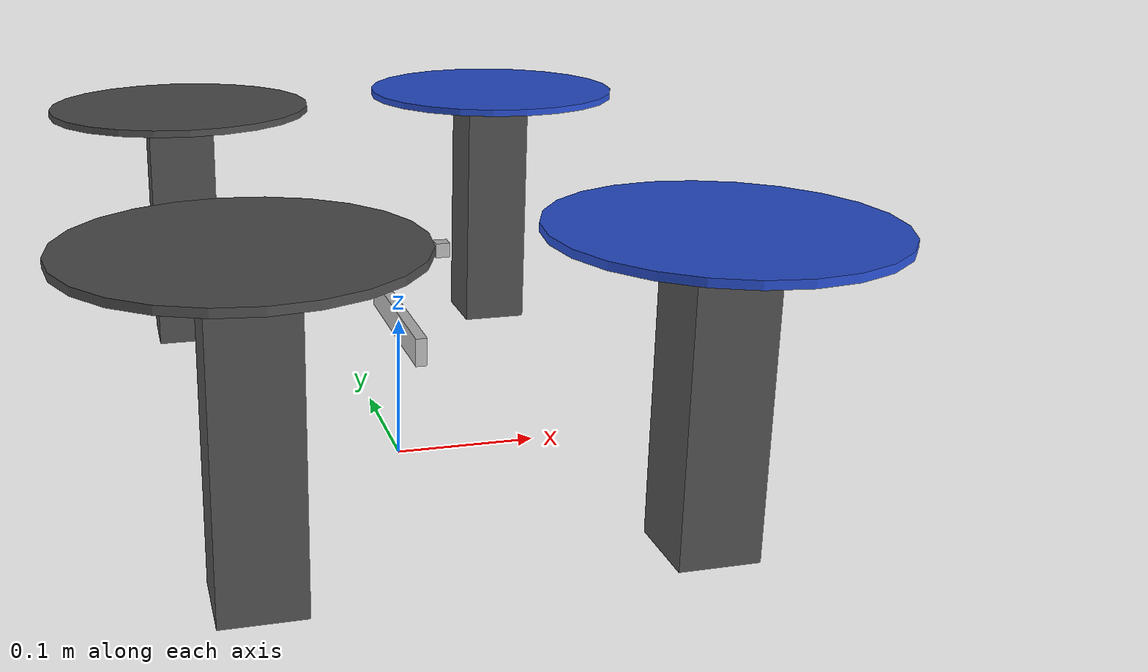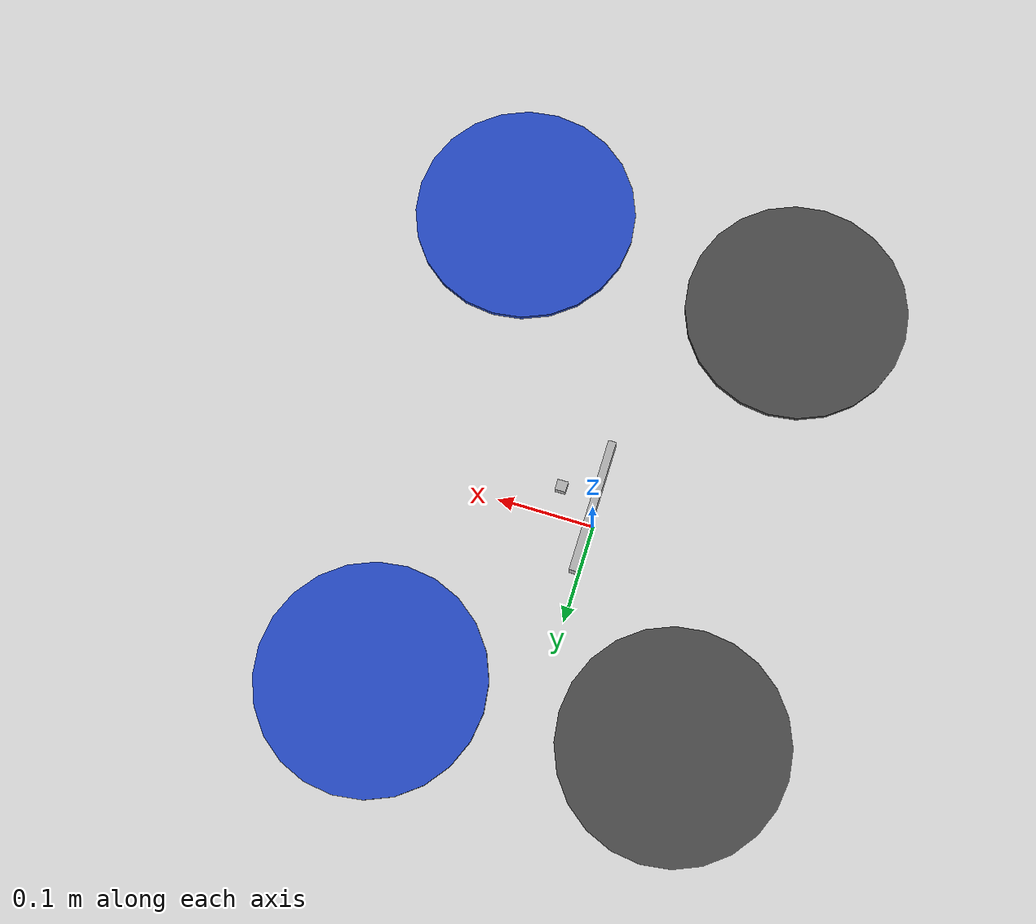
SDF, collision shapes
<?xml version='1.0'?>
<sdf version="1.6" >
  <model name="drone_with_lidar_altimeter_and_realsense">
    <include>
      <uri>model://iris_base</uri>
    </include>

    <plugin name="realsense_plugin" filename="librealsense_gazebo_plugin.so"/>

    <link name="realsense_link">
      <pose frame="">0 0 0.1 0 0 0</pose>
      <inertial>
        <mass>0.0615752</mass>
        <inertia>
          <ixx>9.108e-05</ixx>
          <ixy>0</ixy>
          <ixz>0</ixz>
          <iyy>2.51e-06</iyy>
          <iyz>0</iyz>
          <izz>8.931e-05</izz>
        </inertia>
        <pose frame=''>0 0 0 0 0 0</pose>
      </inertial>
      <self_collide>0</self_collide>
      <enable_wind>0</enable_wind>
      <kinematic>0</kinematic>
      <gravity>1</gravity>
      <visual name="visual">
        <geometry>
          <mesh>
            <uri>model://realsense_camera/meshes/realsense.dae</uri>
          </mesh>
        </geometry>
      </visual>
      <collision name='collision'>
        <laser_retro>0</laser_retro>
        <max_contacts>10</max_contacts>
        <pose frame=''>0 0 0 0 -0 0</pose>
        <geometry>
          <box>
            <size>0.0078 0.130 0.0192</size>
          </box>
        </geometry>
        <surface>
          <friction>
            <ode>
              <mu>1</mu>
              <mu2>1</mu2>
              <fdir1>0 0 0</fdir1>
              <slip1>0</slip1>
              <slip2>0</slip2>
            </ode>
            <torsional>
              <coefficient>1</coefficient>
              <patch_radius>0</patch_radius>
              <surface_radius>0</surface_radius>
              <use_patch_radius>1</use_patch_radius>
              <ode>
                <slip>0</slip>
              </ode>
            </torsional>
          </friction>
          <bounce>
            <restitution_coefficient>0</restitution_coefficient>
            <threshold>1e+06</threshold>
          </bounce>
          <contact>
            <collide_without_contact>0</collide_without_contact>
            <collide_without_contact_bitmask>1</collide_without_contact_bitmask>
            <collide_bitmask>1</collide_bitmask>
            <ode>
              <soft_cfm>0</soft_cfm>
              <soft_erp>0.2</soft_erp>
              <kp>1e+13</kp>
              <kd>1</kd>
              <max_vel>0.01</max_vel>
              <min_depth>0</min_depth>
            </ode>
            <bullet>
              <split_impulse>1</split_impulse>
              <split_impulse_penetration_threshold>-0.01</split_impulse_penetration_threshold>
              <soft_cfm>0</soft_cfm>
              <soft_erp>0.2</soft_erp>
              <kp>1e+13</kp>
              <kd>1</kd>
            </bullet>
          </contact>
        </surface>
      </collision>
      <sensor name="color" type="camera">
        <pose frame="">0 -0.046 0.004 0 0 0</pose>
        <camera name="__default__">
          <horizontal_fov>1.047</horizontal_fov>
          <image>
            <width>640</width>
            <height>480</height>
            <format>RGB_INT8</format>
          </image>
          <clip>
            <near>0.1</near>
            <far>100</far>
          </clip>
          <noise>
            <type>gaussian</type>
            <mean>0.0</mean>
            <stddev>0.007</stddev>
          </noise>
        </camera>
        <always_on>1</always_on>
        <update_rate>60</update_rate>
        <visualize>1</visualize>
      </sensor>
      <sensor name="ired1" type="camera">
        <pose frame="">0 -0.06 0.004 0 0 0</pose>
        <camera name="__default__">
          <horizontal_fov>1.047</horizontal_fov>
          <image>
            <width>640</width>
            <height>480</height>
            <format>L_INT8</format>
          </image>
          <clip>
            <near>0.1</near>
            <far>100</far>
          </clip>
          <noise>
            <type>gaussian</type>
            <mean>0.0</mean>
            <stddev>0.007</stddev>
          </noise>
        </camera>
        <always_on>1</always_on>
        <update_rate>60</update_rate>
        <visualize>0</visualize>
      </sensor>
      <sensor name="ired2" type="camera">
        <pose frame="">0 0.01 0.004 0 0 0</pose>
        <camera name="__default__">
          <horizontal_fov>1.047</horizontal_fov>
          <image>
            <width>640</width>
            <height>480</height>
            <format>L_INT8</format>
          </image>
          <clip>
            <near>0.1</near>
            <far>100</far>
          </clip>
          <noise>
            <type>gaussian</type>
            <mean>0.0</mean>
            <stddev>0.007</stddev>
          </noise>
        </camera>
        <always_on>1</always_on>
        <update_rate>60</update_rate>
        <visualize>0</visualize>
      </sensor>
      <sensor name="depth" type="depth">
        <pose frame="">0 -0.03 0.004 0 0 0</pose>
        <camera name="__default__">
          <horizontal_fov>1.047</horizontal_fov>
          <image>
            <width>640</width>
            <height>480</height>
          </image>
          <clip>
            <near>0.1</near>
            <far>100</far>
          </clip>
          <noise>
            <type>gaussian</type>
            <mean>0.0</mean>
            <stddev>0.007</stddev>
          </noise>
        </camera>
        <always_on>1</always_on>
        <update_rate>60</update_rate>
        <visualize>0</visualize>
      </sensor>
    </link>
    <joint type="fixed" name="base_realsense_joint">
        <pose>0 0 0 0 0 0</pose>
        <parent>iris::base_link</parent>
        <child>realsense_link</child>
        <axis>
          <limit>
            <lower>0</lower>
            <upper>0</upper>
          </limit>
          <xyz>0 0 1</xyz>
          <use_parent_model_frame>true</use_parent_model_frame>
        </axis>
      </joint>

          <!-- Sonar Sensor -->
      <link name="base_sonar_front">
        <pose>0.03 0 .15 0 1.57 0</pose>
        <collision name="sonar_collision">
          <geometry>
            <box>
              <size>.01 .01 .01</size>
            </box>
          </geometry>
        </collision>

        <visual name="visual">
          <geometry>
            <box>
              <size>0.01 0.01 0.01</size>
            </box>
          </geometry>
        </visual>
        <inertial>
          <mass>0.001</mass>
          <inertia>
            <ixx>0.001</ixx>
            <ixy>0</ixy>
            <ixz>0</ixz>
            <iyy>0.001</iyy>
            <iyz>0</iyz>
            <izz>0.001</izz>
          </inertia>
        </inertial>
        <sensor type="ray" name="sonar_sensor">

          <visualize>true</visualize>
          <update_rate>50</update_rate>
          <ray>
             <scan>
                <horizontal>
                   <samples>1</samples>
                   <resolution>1</resolution>
                </horizontal>
                <vertical>
                   <samples>10</samples>
                   <resolution>1</resolution>
                </vertical>
             </scan>
             <range>
                <min>0.06</min>
                <max>50</max>
                <resolution>0.02</resolution>
             </range>
          </ray>
          <plugin filename="libgazebo_ros_range.so" name="gazebo_ros_range">
             <gaussianNoise>0.005</gaussianNoise>
             <alwaysOn>true</alwaysOn>
             <updateRate>50</updateRate>
             <topicName>/mavros/distance_sensor/rangefinder_sub</topicName>
             <frameName>base_sonar_front</frameName>
             <radiation>INFRARED</radiation>
             <fov>0.2967</fov>
          </plugin>
        </sensor>
      </link>

      <joint type="fixed" name="base_sonar_joint">
        <pose>0 0 0 0 0 0</pose>
        <parent>iris::base_link</parent>
        <child>base_sonar_front</child>
        <axis>
          <limit>
            <lower>0</lower>
            <upper>0</upper>
          </limit>
          <xyz>0 0 1</xyz>
          <use_parent_model_frame>true</use_parent_model_frame>
        </axis>
      </joint>

    <!-- plugins -->
    <plugin name="rotor_0_blade_1" filename="libLiftDragPlugin.so">
      <a0>0.3</a0>
      <alpha_stall>1.4</alpha_stall>
      <cla>4.2500</cla>
      <cda>0.10</cda>
      <cma>0.00</cma>
      <cla_stall>-0.025</cla_stall>
      <cda_stall>0.0</cda_stall>
      <cma_stall>0.0</cma_stall>
      <area>0.002</area>
      <air_density>1.2041</air_density>
      <cp>0.084 0 0</cp>
      <forward>0 1 0</forward>
      <upward>0 0 1</upward>
      <link_name>iris::rotor_0</link_name>
    </plugin>
    <plugin name="rotor_0_blade_2" filename="libLiftDragPlugin.so">
      <a0>0.3</a0>
      <alpha_stall>1.4</alpha_stall>
      <cla>4.2500</cla>
      <cda>0.10</cda>
      <cma>0.00</cma>
      <cla_stall>-0.025</cla_stall>
      <cda_stall>0.0</cda_stall>
      <cma_stall>0.0</cma_stall>
      <area>0.002</area>
      <air_density>1.2041</air_density>
      <cp>-0.084 0 0</cp>
      <forward>0 -1 0</forward>
      <upward>0 0 1</upward>
      <link_name>iris::rotor_0</link_name>
    </plugin>

    <plugin name="rotor_1_blade_1" filename="libLiftDragPlugin.so">
      <a0>0.3</a0>
      <alpha_stall>1.4</alpha_stall>
      <cla>4.2500</cla>
      <cda>0.10</cda>
      <cma>0.00</cma>
      <cla_stall>-0.025</cla_stall>
      <cda_stall>0.0</cda_stall>
      <cma_stall>0.0</cma_stall>
      <area>0.002</area>
      <air_density>1.2041</air_density>
      <cp>0.084 0 0</cp>
      <forward>0 1 0</forward>
      <upward>0 0 1</upward>
      <link_name>iris::rotor_1</link_name>
    </plugin>
    <plugin name="rotor_1_blade_2" filename="libLiftDragPlugin.so">
      <a0>0.3</a0>
      <alpha_stall>1.4</alpha_stall>
      <cla>4.2500</cla>
      <cda>0.10</cda>
      <cma>0.00</cma>
      <cla_stall>-0.025</cla_stall>
      <cda_stall>0.0</cda_stall>
      <cma_stall>0.0</cma_stall>
      <area>0.002</area>
      <air_density>1.2041</air_density>
      <cp>-0.084 0 0</cp>
      <forward>0 -1 0</forward>
      <upward>0 0 1</upward>
      <link_name>iris::rotor_1</link_name>
    </plugin>

    <plugin name="rotor_2_blade_1" filename="libLiftDragPlugin.so">
      <a0>0.3</a0>
      <alpha_stall>1.4</alpha_stall>
      <cla>4.2500</cla>
      <cda>0.10</cda>
      <cma>0.00</cma>
      <cla_stall>-0.025</cla_stall>
      <cda_stall>0.0</cda_stall>
      <cma_stall>0.0</cma_stall>
      <area>0.002</area>
      <air_density>1.2041</air_density>
      <cp>0.084 0 0</cp>
      <forward>0 -1 0</forward>
      <upward>0 0 1</upward>
      <link_name>iris::rotor_2</link_name>
    </plugin>
    <plugin name="rotor_2_blade_2" filename="libLiftDragPlugin.so">
      <a0>0.3</a0>
      <alpha_stall>1.4</alpha_stall>
      <cla>4.2500</cla>
      <cda>0.10</cda>
      <cma>0.00</cma>
      <cla_stall>-0.025</cla_stall>
      <cda_stall>0.0</cda_stall>
      <cma_stall>0.0</cma_stall>
      <area>0.002</area>
      <air_density>1.2041</air_density>
      <cp>-0.084 0 0</cp>
      <forward>0 1 0</forward>
      <upward>0 0 1</upward>
      <link_name>iris::rotor_2</link_name>
    </plugin>

    <plugin name="rotor_3_blade_1" filename="libLiftDragPlugin.so">
      <a0>0.3</a0>
      <alpha_stall>1.4</alpha_stall>
      <cla>4.2500</cla>
      <cda>0.10</cda>
      <cma>0.00</cma>
      <cla_stall>-0.025</cla_stall>
      <cda_stall>0.0</cda_stall>
      <cma_stall>0.0</cma_stall>
      <area>0.002</area>
      <air_density>1.2041</air_density>
      <cp>0.084 0 0</cp>
      <forward>0 -1 0</forward>
      <upward>0 0 1</upward>
      <link_name>iris::rotor_3</link_name>
    </plugin>
    <plugin name="rotor_3_blade_2" filename="libLiftDragPlugin.so">
      <a0>0.3</a0>
      <alpha_stall>1.4</alpha_stall>
      <cla>4.2500</cla>
      <cda>0.10</cda>
      <cma>0.00</cma>
      <cla_stall>-0.025</cla_stall>
      <cda_stall>0.0</cda_stall>
      <cma_stall>0.0</cma_stall>
      <area>0.002</area>
      <air_density>1.2041</air_density>
      <cp>-0.084 0 0</cp>
      <forward>0 1 0</forward>
      <upward>0 0 1</upward>
      <link_name>iris::rotor_3</link_name>
    </plugin>
    <plugin name="arducopter_plugin" filename="libArduPilotPlugin.so">
      <fdm_addr>127.0.0.1</fdm_addr>
      <fdm_port_in>9002</fdm_port_in>
      <fdm_port_out>9003</fdm_port_out>
      <!--
          Require by APM :
          Only change model and gazebo from XYZ to XY-Z coordinates
      -->
      <modelXYZToAirplaneXForwardZDown>0 0 0 3.141593 0 0</modelXYZToAirplaneXForwardZDown>
      <gazeboXYZToNED>0 0 0 3.141593 0 0</gazeboXYZToNED>
      <imuName>iris::iris/imu_link::imu_sensor</imuName>
      <connectionTimeoutMaxCount>5</connectionTimeoutMaxCount>
      <control channel="0">
      <!--
          incoming control command [0, 1]
          so offset it by 0 to get [0, 1]
          and divide max target by 1.
          offset = 0
          multiplier = 838 max rpm / 1 = 838
        -->
        <type>VELOCITY</type>
        <offset>0</offset>
        <p_gain>0.20</p_gain>
        <i_gain>0</i_gain>
        <d_gain>0</d_gain>
        <i_max>0</i_max>
        <i_min>0</i_min>
        <cmd_max>2.5</cmd_max>
        <cmd_min>-2.5</cmd_min>
        <jointName>iris::rotor_0_joint</jointName>
        <multiplier>838</multiplier>
        <controlVelocitySlowdownSim>0</controlVelocitySlowdownSim>
      </control>
      <control channel="1">
        <type>VELOCITY</type>
        <offset>0</offset>
        <p_gain>0.20</p_gain>
        <i_gain>0</i_gain>
        <d_gain>0</d_gain>
        <i_max>0</i_max>
        <i_min>0</i_min>
        <cmd_max>2.5</cmd_max>
        <cmd_min>-2.5</cmd_min>
        <jointName>iris::rotor_1_joint</jointName>
        <multiplier>838</multiplier>
        <controlVelocitySlowdownSim>0</controlVelocitySlowdownSim>
      </control>
      <control channel="2">
        <type>VELOCITY</type>
        <offset>0</offset>
        <p_gain>0.20</p_gain>
        <i_gain>0</i_gain>
        <d_gain>0</d_gain>
        <i_max>0</i_max>
        <i_min>0</i_min>
        <cmd_max>2.5</cmd_max>
        <cmd_min>-2.5</cmd_min>
        <jointName>iris::rotor_2_joint</jointName>
        <multiplier>-838</multiplier>
        <controlVelocitySlowdownSim>0</controlVelocitySlowdownSim>
      </control>
      <control channel="3">
        <type>VELOCITY</type>
        <offset>0</offset>
        <p_gain>0.20</p_gain>
        <i_gain>0</i_gain>
        <d_gain>0</d_gain>
        <i_max>0</i_max>
        <i_min>0</i_min>
        <cmd_max>2.5</cmd_max>
        <cmd_min>-2.5</cmd_min>
        <jointName>iris::rotor_3_joint</jointName>
        <multiplier>-838</multiplier>
        <controlVelocitySlowdownSim>0</controlVelocitySlowdownSim>
      </control>
    </plugin>

  </model>
</sdf>

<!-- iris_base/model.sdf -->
<sdf version='1.6'>
  <model name='iris'>
    <pose>0 0 0.194923 0 0 0</pose>
    <link name='base_link'>
      <velocity_decay>
        <linear>0.0</linear>
        <angular>0.0</angular>
      </velocity_decay>
      <inertial>
        <pose>0 0 0 0 0 0</pose>
        <mass>1.5</mass>
        <inertia>
          <ixx>0.008</ixx>
          <ixy>0</ixy>
          <ixz>0</ixz>
          <iyy>0.015</iyy>
          <iyz>0</iyz>
          <izz>0.017</izz>
        </inertia>
      </inertial>
      <collision name='base_link_collision_fl'>
        <pose>0.13 0.22 -0.08 0 0 0</pose>
        <geometry>
          <box>
            <size>0.05 0.05 0.18</size>
          </box>
        </geometry>
        <surface>
          <contact>
            <ode>
              <max_vel>100.0</max_vel>
              <min_depth>0.001</min_depth>
            </ode>
          </contact>
          <friction>
            <ode>
              <mu>1.0</mu>
              <mu2>1.0</mu2>
            </ode>
          </friction>
        </surface>
      </collision>
      <collision name='base_link_collision_fr'>
        <pose>0.13 -0.22 -0.08 0 0 0</pose>
        <geometry>
          <box>
            <size>0.05 0.05 0.18</size>
          </box>
        </geometry>
        <surface>
          <contact>
            <ode>
              <max_vel>100.0</max_vel>
              <min_depth>0.001</min_depth>
            </ode>
          </contact>
          <friction>
            <ode>
              <mu>1.0</mu>
              <mu2>1.0</mu2>
            </ode>
          </friction>
        </surface>
      </collision>
      <collision name='base_link_collision_br'>
        <pose>-0.13 -0.22 -0.08 0 0 0</pose>
        <geometry>
          <box>
            <size>0.05 0.05 0.18</size>
          </box>
        </geometry>
        <surface>
          <contact>
            <ode>
              <max_vel>100.0</max_vel>
              <min_depth>0.001</min_depth>
            </ode>
          </contact>
          <friction>
            <ode>
              <mu>1.0</mu>
              <mu2>1.0</mu2>
            </ode>
          </friction>
        </surface>
      </collision>
      <collision name='base_link_collision_bl'>
        <pose>-0.13 0.22 -0.08 0 0 0</pose>
        <geometry>
          <box>
            <size>0.05 0.05 0.18</size>
          </box>
        </geometry>
        <surface>
          <contact>
            <ode>
              <max_vel>100.0</max_vel>
              <min_depth>0.001</min_depth>
            </ode>
          </contact>
          <friction>
            <ode>
              <mu>1.0</mu>
              <mu2>1.0</mu2>
            </ode>
          </friction>
        </surface>
      </collision>
      <visual name='base_link_visual'>
        <geometry>
          <mesh>
            <uri>model://iris_base/meshes/iris.dae</uri>
          </mesh>
        </geometry>
        <material>
          <script>
            <name>Gazebo/DarkGrey</name>
          </script>
        </material>
      </visual>

      <visual name='front_left_leg_visual'>
        <pose>0.123 0.22 -0.11 0 0 0</pose>
        <geometry>
          <cylinder>
            <radius>0.005</radius>
            <length>0.17</length>
          </cylinder>
        </geometry>
        <material>
          <script>
            <name>Gazebo/FlatBlack</name>
            <uri>file://media/materials/scripts/gazebo.material</uri>
          </script>
        </material>
      </visual>
      <visual name='front_right_leg_visual'>
        <pose>0.123 -0.22 -0.11 0 0 0</pose>
        <geometry>
          <cylinder>
            <radius>0.005</radius>
            <length>0.17</length>
          </cylinder>
        </geometry>
        <material>
          <script>
            <name>Gazebo/FlatBlack</name>
            <uri>file://media/materials/scripts/gazebo.material</uri>
          </script>
        </material>
      </visual>
      <visual name='rear_left_leg_visual'>
        <pose>-0.140 0.21 -0.11 0 0 0</pose>
        <geometry>
          <cylinder>
            <radius>0.005</radius>
            <length>0.17</length>
          </cylinder>
        </geometry>
        <material>
          <script>
            <name>Gazebo/FlatBlack</name>
            <uri>file://media/materials/scripts/gazebo.material</uri>
          </script>
        </material>
      </visual>
      <visual name='rear_right_leg_visual'>
        <pose>-0.140 -0.21 -0.11 0 0 0</pose>
        <geometry>
          <cylinder>
            <radius>0.005</radius>
            <length>0.17</length>
          </cylinder>
        </geometry>
        <material>
          <script>
            <name>Gazebo/FlatBlack</name>
            <uri>file://media/materials/scripts/gazebo.material</uri>
          </script>
        </material>
      </visual>
    </link>
    <link name='iris/ground_truth/odometry_sensorgt_link'>
      <pose>0 0 0 0 -0 0</pose>
      <inertial>
        <pose>0 0 0 0 -0 0</pose>
        <mass>0.15</mass>
        <inertia>
          <ixx>0.0001</ixx>
          <ixy>0</ixy>
          <ixz>0</ixz>
          <iyy>0.0002</iyy>
          <iyz>0</iyz>
          <izz>0.0002</izz>
        </inertia>
      </inertial>
    </link>
    <joint name='iris/ground_truth/odometry_sensorgt_joint' type='revolute'>
      <child>iris/ground_truth/odometry_sensorgt_link</child>
      <parent>base_link</parent>
      <axis>
        <xyz>0 0 1</xyz>
        <limit>
          <lower>0</lower>
          <upper>0</upper>
          <effort>0</effort>
          <velocity>0</velocity>
        </limit>
        <dynamics>
          <damping>1.0</damping>
        </dynamics>
        <use_parent_model_frame>1</use_parent_model_frame>
      </axis>
      <physics>
        <ode>
          <implicit_spring_damper>1</implicit_spring_damper>
        </ode>
      </physics>
    </joint>
    <link name='iris/imu_link'>
      <inertial>
        <pose>0 0 0 0 0 0</pose>
        <mass>0.15</mass>
        <inertia>
          <ixx>0.00001</ixx>
          <ixy>0</ixy>
          <ixz>0</ixz>
          <iyy>0.00002</iyy>
          <iyz>0</iyz>
          <izz>0.00002</izz>
        </inertia>
      </inertial>
      <sensor name="imu_sensor" type="imu">
        <pose>0 0 0 3.141593 0 0</pose>
        <always_on>1</always_on>
        <update_rate>1000.0</update_rate>
      </sensor>
    </link>
    <joint name='iris/imu_joint' type='revolute'>
      <child>iris/imu_link</child>
      <parent>base_link</parent>
      <axis>
        <xyz>0 0 1</xyz>
        <limit>
          <lower>0</lower>
          <upper>0</upper>
          <effort>0</effort>
          <velocity>0</velocity>
        </limit>
        <dynamics>
          <damping>1.0</damping>
        </dynamics>
        <use_parent_model_frame>1</use_parent_model_frame>
      </axis>
      <physics>
        <ode>
          <implicit_spring_damper>1</implicit_spring_damper>
        </ode>
      </physics>
    </joint>
    <link name='rotor_0'>
      <pose>0.13 -0.22 0.023 0 -0 0</pose>
      <inertial>
        <pose>0 0 0 0 -0 0</pose>
        <mass>0.025</mass>
        <inertia>
          <ixx>9.75e-06</ixx>
          <ixy>0</ixy>
          <ixz>0</ixz>
          <iyy>0.000166704</iyy>
          <iyz>0</iyz>
          <izz>0.000167604</izz>
        </inertia>
      </inertial>
      <collision name='rotor_0_collision'>
        <pose>0 0 0 0 -0 0</pose>
        <geometry>
          <cylinder>
            <length>0.005</length>
            <radius>0.1</radius>
          </cylinder>
        </geometry>
        <surface>
          <contact>
            <ode/>
          </contact>
          <friction>
            <ode/>
          </friction>
        </surface>
      </collision>
      <visual name='rotor_0_visual'>
        <pose>0 0 0 0 -0 0</pose>
        <geometry>
          <mesh>
            <scale>1 1 1</scale>
            <uri>model://iris_base/meshes/iris_prop_ccw.dae</uri>
          </mesh>
        </geometry>
        <material>
          <script>
            <name>Gazebo/Blue</name>
            <uri>__default__</uri>
          </script>
        </material>
      </visual>
      <gravity>1</gravity>
      <velocity_decay/>
      <self_collide>0</self_collide>
    </link>
    <joint name='rotor_0_joint' type='revolute'>
      <child>rotor_0</child>
      <parent>base_link</parent>
      <axis>
        <xyz>0 0 1</xyz>
        <limit>
          <lower>-1e+16</lower>
          <upper>1e+16</upper>
        </limit>
        <dynamics>
          <damping>0.004</damping>
        </dynamics>
        <use_parent_model_frame>1</use_parent_model_frame>
      </axis>
      <physics>
        <ode>
          <implicit_spring_damper>1</implicit_spring_damper>
        </ode>
      </physics>
    </joint>
    <link name='rotor_1'>
      <pose>-0.13 0.2 0.023 0 -0 0</pose>
      <inertial>
        <pose>0 0 0 0 -0 0</pose>
        <mass>0.025</mass>
        <inertia>
          <ixx>9.75e-06</ixx>
          <ixy>0</ixy>
          <ixz>0</ixz>
          <iyy>0.000166704</iyy>
          <iyz>0</iyz>
          <izz>0.000167604</izz>
        </inertia>
      </inertial>
      <collision name='rotor_1_collision'>
        <pose>0 0 0 0 -0 0</pose>
        <geometry>
          <cylinder>
            <length>0.005</length>
            <radius>0.1</radius>
          </cylinder>
        </geometry>
        <surface>
          <contact>
            <ode/>
          </contact>
          <friction>
            <ode/>
          </friction>
        </surface>
      </collision>
      <visual name='rotor_1_visual'>
        <pose>0 0 0 0 -0 0</pose>
        <geometry>
          <mesh>
            <scale>1 1 1</scale>
            <uri>model://iris_base/meshes/iris_prop_ccw.dae</uri>
          </mesh>
        </geometry>
        <material>
          <script>
            <name>Gazebo/DarkGrey</name>
            <uri>__default__</uri>
          </script>
        </material>
      </visual>
      <gravity>1</gravity>
      <velocity_decay/>
      <self_collide>0</self_collide>
    </link>
    <joint name='rotor_1_joint' type='revolute'>
      <child>rotor_1</child>
      <parent>base_link</parent>
      <axis>
        <xyz>0 0 1</xyz>
        <limit>
          <lower>-1e+16</lower>
          <upper>1e+16</upper>
        </limit>
        <dynamics>
          <damping>0.004</damping>
        </dynamics>
        <use_parent_model_frame>1</use_parent_model_frame>
      </axis>
      <physics>
        <ode>
          <implicit_spring_damper>1</implicit_spring_damper>
        </ode>
      </physics>
    </joint>
    <link name='rotor_2'>
      <pose>0.13 0.22 0.023 0 -0 0</pose>
      <inertial>
        <pose>0 0 0 0 -0 0</pose>
        <mass>0.025</mass>
        <inertia>
          <ixx>9.75e-06</ixx>
          <ixy>0</ixy>
          <ixz>0</ixz>
          <iyy>0.000166704</iyy>
          <iyz>0</iyz>
          <izz>0.000167604</izz>
        </inertia>
      </inertial>
      <collision name='rotor_2_collision'>
        <pose>0 0 0 0 -0 0</pose>
        <geometry>
          <cylinder>
            <length>0.005</length>
            <radius>0.1</radius>
          </cylinder>
        </geometry>
        <surface>
          <contact>
            <ode/>
          </contact>
          <friction>
            <ode/>
          </friction>
        </surface>
      </collision>
      <visual name='rotor_2_visual'>
        <pose>0 0 0 0 -0 0</pose>
        <geometry>
          <mesh>
            <scale>1 1 1</scale>
            <uri>model://iris_base/meshes/iris_prop_cw.dae</uri>
          </mesh>
        </geometry>
        <material>
          <script>
            <name>Gazebo/Blue</name>
            <uri>__default__</uri>
          </script>
        </material>
      </visual>
      <gravity>1</gravity>
      <velocity_decay/>
      <self_collide>0</self_collide>
    </link>
    <joint name='rotor_2_joint' type='revolute'>
      <child>rotor_2</child>
      <parent>base_link</parent>
      <axis>
        <xyz>0 0 1</xyz>
        <limit>
          <lower>-1e+16</lower>
          <upper>1e+16</upper>
        </limit>
        <dynamics>
          <damping>0.004</damping>
        </dynamics>
        <use_parent_model_frame>1</use_parent_model_frame>
      </axis>
      <physics>
        <ode>
          <implicit_spring_damper>1</implicit_spring_damper>
        </ode>
      </physics>
    </joint>
    <link name='rotor_3'>
      <pose>-0.13 -0.2 0.023 0 -0 0</pose>
      <inertial>
        <pose>0 0 0 0 -0 0</pose>
        <mass>0.025</mass>
        <inertia>
          <ixx>9.75e-06</ixx>
          <ixy>0</ixy>
          <ixz>0</ixz>
          <iyy>0.000166704</iyy>
          <iyz>0</iyz>
          <izz>0.000167604</izz>
        </inertia>
      </inertial>
      <collision name='rotor_3_collision'>
        <pose>0 0 0 0 -0 0</pose>
        <geometry>
          <cylinder>
            <length>0.005</length>
            <radius>0.1</radius>
          </cylinder>
        </geometry>
        <surface>
          <contact>
            <ode/>
          </contact>
          <friction>
            <ode/>
          </friction>
        </surface>
      </collision>
      <visual name='rotor_3_visual'>
        <pose>0 0 0 0 -0 0</pose>
        <geometry>
          <mesh>
            <scale>1 1 1</scale>
            <uri>model://iris_base/meshes/iris_prop_cw.dae</uri>
          </mesh>
        </geometry>
        <material>
          <script>
            <name>Gazebo/DarkGrey</name>
            <uri>__default__</uri>
          </script>
        </material>
      </visual>
      <gravity>1</gravity>
      <velocity_decay/>
      <self_collide>0</self_collide>
    </link>
    <joint name='rotor_3_joint' type='revolute'>
      <child>rotor_3</child>
      <parent>base_link</parent>
      <axis>
        <xyz>0 0 1</xyz>
        <limit>
          <lower>-1e+16</lower>
          <upper>1e+16</upper>
        </limit>
        <dynamics>
          <damping>0.004</damping>
        </dynamics>
        <use_parent_model_frame>1</use_parent_model_frame>
      </axis>
      <physics>
        <ode>
          <implicit_spring_damper>1</implicit_spring_damper>
        </ode>
      </physics>
    </joint>
    <static>0</static>
  </model>
</sdf>
